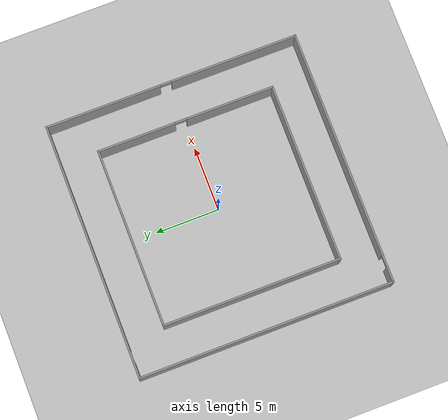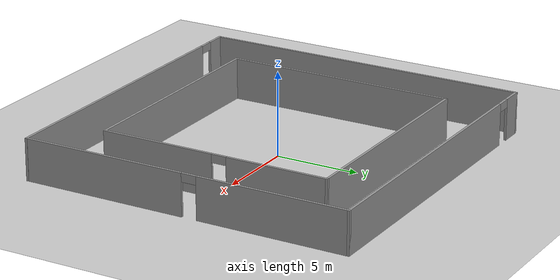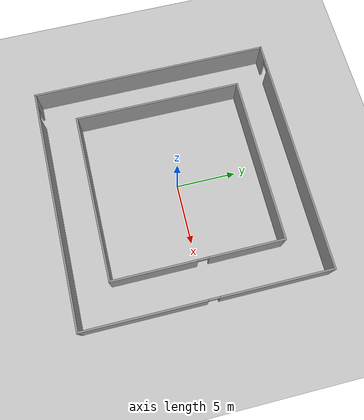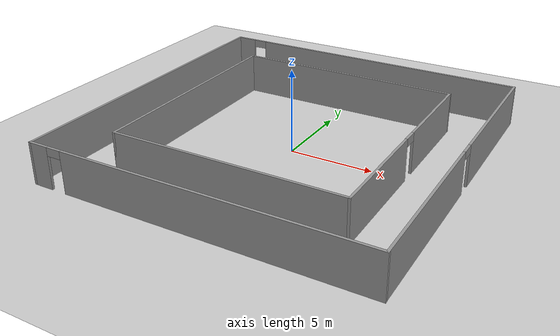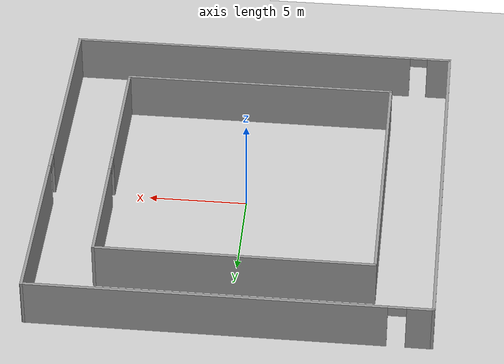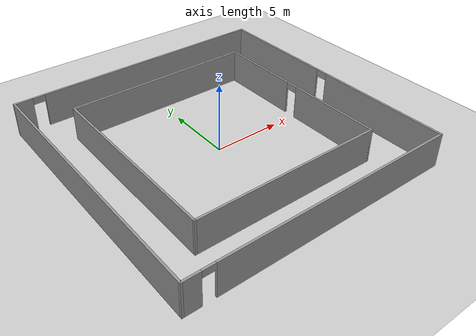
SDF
<sdf version="1.7">
 <world name="default">
  <light name="sun" type="directional">
   <pose>0 0 10 0 -0 0</pose>
   <diffuse>0.8 0.8 0.8 1</diffuse>
   <specular>0.2 0.2 0.2 1</specular>
   <attenuation>
    <range>1000</range>
    <constant>0.9</constant>
    <linear>0.01</linear>
    <quadratic>0.001</quadratic>
   </attenuation>
   <direction>-0.5 0.1 -0.9</direction>
   <spot><inner_angle>0</inner_angle><outer_angle>0</outer_angle><falloff>0</falloff></spot>
  </light>
  <model name="ground_plane">
   <static>1</static>
   <link name="link">
    <collision name="collision">
     <geometry><plane><normal>0 0 1</normal><size>100 100</size></plane></geometry>
     <surface>
      <contact><collide_bitmask>65535</collide_bitmask></contact>
      <friction><ode><mu>100</mu><mu2>50</mu2></ode></friction>
     </surface>
    </collision>
    <visual name="visual">
     <cast_shadows>0</cast_shadows>
     <geometry><plane><normal>0 0 1</normal><size>100 100</size></plane></geometry>
     <material>
      <script><uri>file://media/materials/scripts/gazebo.material</uri><name>Gazebo/Grey</name></script>
     </material>
    </visual>
   </link>
  </model>
  <gravity>0 0 -9.8</gravity>
  <magnetic_field>6e-06 2.3e-05 -4.2e-05</magnetic_field>
  <atmosphere type="adiabatic"/>
  <physics type="ode">
   <max_step_size>0.001</max_step_size>
   <real_time_factor>1</real_time_factor>
   <real_time_update_rate>1000</real_time_update_rate>
  </physics>
  <scene><ambient>0.4 0.4 0.4 1</ambient><background>0.7 0.7 0.7 1</background><shadows>1</shadows></scene>
  <spherical_coordinates>
   <surface_model>EARTH_WGS84</surface_model>
   <latitude_deg>0</latitude_deg>
   <longitude_deg>0</longitude_deg>
   <elevation>0</elevation>
   <heading_deg>0</heading_deg>
  </spherical_coordinates>
  <model name="corridors_3m">
   <pose>0.018121 -0.008431 0 0 -0 0</pose>
   <link name="Wall_1">
    <pose>1.8e-05 -9.925 0 0 -0 3.14159</pose>
    <visual name="Wall_1_Visual_0">
     <pose>-1.07983 0 1.25 0 -0 0</pose>
     <geometry><box><size>17.9015 0.15 2.5</size></box></geometry>
     <material>
      <script><uri>file://media/materials/scripts/gazebo.material</uri><name>Gazebo/Grey</name></script>
      <ambient>1 1 1 1</ambient>
     </material>
     <meta><layer>0</layer></meta>
    </visual>
    <collision name="Wall_1_Collision_0">
     <geometry><box><size>17.9015 0.15 2.5</size></box></geometry>
     <pose>-1.07983 0 1.25 0 -0 0</pose>
    </collision>
    <visual name="Wall_1_Visual_1">
     <pose>9.40076 0 1.25 0 -0 0</pose>
     <geometry><box><size>1.25965 0.15 2.5</size></box></geometry>
     <material>
      <script><uri>file://media/materials/scripts/gazebo.material</uri><name>Gazebo/Grey</name></script>
      <ambient>1 1 1 1</ambient>
     </material>
     <meta><layer>0</layer></meta>
    </visual>
    <collision name="Wall_1_Collision_1">
     <geometry><box><size>1.25965 0.15 2.5</size></box></geometry>
     <pose>9.40076 0 1.25 0 -0 0</pose>
    </collision>
    <visual name="Wall_1_Visual_2">
     <pose>8.32094 0 2.25 0 -0 0</pose>
     <geometry><box><size>0.9 0.15 0.5</size></box></geometry>
     <material>
      <script><uri>file://media/materials/scripts/gazebo.material</uri><name>Gazebo/Grey</name></script>
      <ambient>1 1 1 1</ambient>
     </material>
     <meta><layer>0</layer></meta>
    </visual>
    <collision name="Wall_1_Collision_2">
     <geometry><box><size>0.9 0.15 0.5</size></box></geometry>
     <pose>8.32094 0 2.25 0 -0 0</pose>
    </collision>
   </link>
   <link name="Wall_11">
    <collision name="Wall_11_Collision">
     <geometry><box><size>14 0.15 2.5</size></box></geometry>
     <pose>0 0 1.25 0 -0 0</pose>
    </collision>
    <visual name="Wall_11_Visual">
     <pose>0 0 1.25 0 -0 0</pose>
     <geometry><box><size>14 0.15 2.5</size></box></geometry>
     <material>
      <script><uri>file://media/materials/scripts/gazebo.material</uri><name>Gazebo/Grey</name></script>
      <ambient>1 1 1 1</ambient>
     </material>
     <meta><layer>0</layer></meta>
    </visual>
    <pose>-0.05836 -6.90598 0 0 -0 0</pose>
   </link>
   <link name="Wall_13">
    <pose>6.86664 0.019019 0 0 -0 1.5708</pose>
    <visual name="Wall_13_Visual_0">
     <pose>-3.5323 0 1.25 0 -0 0</pose>
     <geometry><box><size>6.9354 0.15 2.5</size></box></geometry>
     <material>
      <script><uri>file://media/materials/scripts/gazebo.material</uri><name>Gazebo/Grey</name></script>
      <ambient>1 1 1 1</ambient>
     </material>
     <meta><layer>0</layer></meta>
    </visual>
    <collision name="Wall_13_Collision_0">
     <geometry><box><size>6.9354 0.15 2.5</size></box></geometry>
     <pose>-3.5323 0 1.25 0 -0 0</pose>
    </collision>
    <visual name="Wall_13_Visual_1">
     <pose>3.9177 0 1.25 0 -0 0</pose>
     <geometry><box><size>6.1646 0.15 2.5</size></box></geometry>
     <material>
      <script><uri>file://media/materials/scripts/gazebo.material</uri><name>Gazebo/Grey</name></script>
      <ambient>1 1 1 1</ambient>
     </material>
     <meta><layer>0</layer></meta>
    </visual>
    <collision name="Wall_13_Collision_1">
     <geometry><box><size>6.1646 0.15 2.5</size></box></geometry>
     <pose>3.9177 0 1.25 0 -0 0</pose>
    </collision>
    <visual name="Wall_13_Visual_2">
     <pose>0.3854 0 2.25 0 -0 0</pose>
     <geometry><box><size>0.9 0.15 0.5</size></box></geometry>
     <material>
      <script><uri>file://media/materials/scripts/gazebo.material</uri><name>Gazebo/Grey</name></script>
      <ambient>1 1 1 1</ambient>
     </material>
     <meta><layer>0</layer></meta>
    </visual>
    <collision name="Wall_13_Collision_2">
     <geometry><box><size>0.9 0.15 0.5</size></box></geometry>
     <pose>0.3854 0 2.25 0 -0 0</pose>
    </collision>
   </link>
   <link name="Wall_14">
    <collision name="Wall_14_Collision">
     <geometry><box><size>14 0.15 2.5</size></box></geometry>
     <pose>0 0 1.25 0 -0 0</pose>
    </collision>
    <visual name="Wall_14_Visual">
     <pose>0 0 1.25 0 -0 0</pose>
     <geometry><box><size>14 0.15 2.5</size></box></geometry>
     <material>
      <script><uri>file://media/materials/scripts/gazebo.material</uri><name>Gazebo/Grey</name></script>
      <ambient>1 1 1 1</ambient>
     </material>
     <meta><layer>0</layer></meta>
    </visual>
    <pose>-0.05836 6.94402 0 0 -0 3.14159</pose>
   </link>
   <link name="Wall_3">
    <collision name="Wall_3_Collision">
     <geometry><box><size>20 0.15 2.5</size></box></geometry>
     <pose>0 0 1.25 0 -0 0</pose>
    </collision>
    <visual name="Wall_3_Visual">
     <pose>0 0 1.25 0 -0 0</pose>
     <geometry><box><size>20 0.15 2.5</size></box></geometry>
     <material>
      <script><uri>file://media/materials/scripts/gazebo.material</uri><name>Gazebo/Grey</name></script>
      <ambient>1 1 1 1</ambient>
     </material>
     <meta><layer>0</layer></meta>
    </visual>
    <pose>-9.95557 -0 0 0 -0 1.5708</pose>
   </link>
   <link name="Wall_5">
    <pose>-0.003821 9.925 0 0 -0 0</pose>
    <visual name="Wall_5_Visual_0">
     <pose>-9.34344 0 1.25 0 -0 0</pose>
     <geometry><box><size>1.36669 0.15 2.5</size></box></geometry>
     <material>
      <script><uri>file://media/materials/scripts/gazebo.material</uri><name>Gazebo/Grey</name></script>
      <ambient>1 1 1 1</ambient>
     </material>
     <meta><layer>0</layer></meta>
    </visual>
    <collision name="Wall_5_Collision_0">
     <geometry><box><size>1.36669 0.15 2.5</size></box></geometry>
     <pose>-9.34344 0 1.25 0 -0 0</pose>
    </collision>
    <visual name="Wall_5_Visual_1">
     <pose>1.13335 0 1.25 0 -0 0</pose>
     <geometry><box><size>17.7869 0.15 2.5</size></box></geometry>
     <material>
      <script><uri>file://media/materials/scripts/gazebo.material</uri><name>Gazebo/Grey</name></script>
      <ambient>1 1 1 1</ambient>
     </material>
     <meta><layer>0</layer></meta>
    </visual>
    <collision name="Wall_5_Collision_1">
     <geometry><box><size>17.7869 0.15 2.5</size></box></geometry>
     <pose>1.13335 0 1.25 0 -0 0</pose>
    </collision>
    <visual name="Wall_5_Visual_2">
     <pose>-8.2101 0 2.25 0 -0 0</pose>
     <geometry><box><size>0.9 0.15 0.5</size></box></geometry>
     <material>
      <script><uri>file://media/materials/scripts/gazebo.material</uri><name>Gazebo/Grey</name></script>
      <ambient>1 1 1 1</ambient>
     </material>
     <meta><layer>0</layer></meta>
    </visual>
    <collision name="Wall_5_Collision_2">
     <geometry><box><size>0.9 0.15 0.5</size></box></geometry>
     <pose>-8.2101 0 2.25 0 -0 0</pose>
    </collision>
   </link>
   <link name="Wall_7">
    <pose>9.94793 -0 0 0 -0 -1.5708</pose>
    <visual name="Wall_7_Visual_0">
     <pose>-5.45396 0 1.25 0 -0 0</pose>
     <geometry><box><size>9.09208 0.15 2.5</size></box></geometry>
     <material>
      <script><uri>file://media/materials/scripts/gazebo.material</uri><name>Gazebo/Grey</name></script>
      <ambient>1 1 1 1</ambient>
     </material>
     <meta><layer>0</layer></meta>
    </visual>
    <collision name="Wall_7_Collision_0">
     <geometry><box><size>9.09208 0.15 2.5</size></box></geometry>
     <pose>-5.45396 0 1.25 0 -0 0</pose>
    </collision>
    <visual name="Wall_7_Visual_1">
     <pose>4.99604 0 1.25 0 -0 0</pose>
     <geometry><box><size>10.0079 0.15 2.5</size></box></geometry>
     <material>
      <script><uri>file://media/materials/scripts/gazebo.material</uri><name>Gazebo/Grey</name></script>
      <ambient>1 1 1 1</ambient>
     </material>
     <meta><layer>0</layer></meta>
    </visual>
    <collision name="Wall_7_Collision_1">
     <geometry><box><size>10.0079 0.15 2.5</size></box></geometry>
     <pose>4.99604 0 1.25 0 -0 0</pose>
    </collision>
    <visual name="Wall_7_Visual_2">
     <pose>-0.457922 0 2.25 0 -0 0</pose>
     <geometry><box><size>0.9 0.15 0.5</size></box></geometry>
     <material>
      <script><uri>file://media/materials/scripts/gazebo.material</uri><name>Gazebo/Grey</name></script>
      <ambient>1 1 1 1</ambient>
     </material>
     <meta><layer>0</layer></meta>
    </visual>
    <collision name="Wall_7_Collision_2">
     <geometry><box><size>0.9 0.15 0.5</size></box></geometry>
     <pose>-0.457922 0 2.25 0 -0 0</pose>
    </collision>
   </link>
   <link name="Wall_9">
    <collision name="Wall_9_Collision">
     <geometry><box><size>14 0.15 2.5</size></box></geometry>
     <pose>0 0 1.25 0 -0 0</pose>
    </collision>
    <visual name="Wall_9_Visual">
     <pose>0 0 1.25 0 -0 0</pose>
     <geometry><box><size>14 0.15 2.5</size></box></geometry>
     <material>
      <script><uri>file://media/materials/scripts/gazebo.material</uri><name>Gazebo/Grey</name></script>
      <ambient>1 1 1 1</ambient>
     </material>
     <meta><layer>0</layer></meta>
    </visual>
    <pose>-6.98336 0.019019 0 0 -0 1.5708</pose>
   </link>
   <static>1</static>
  </model>
 </world>
</sdf>
